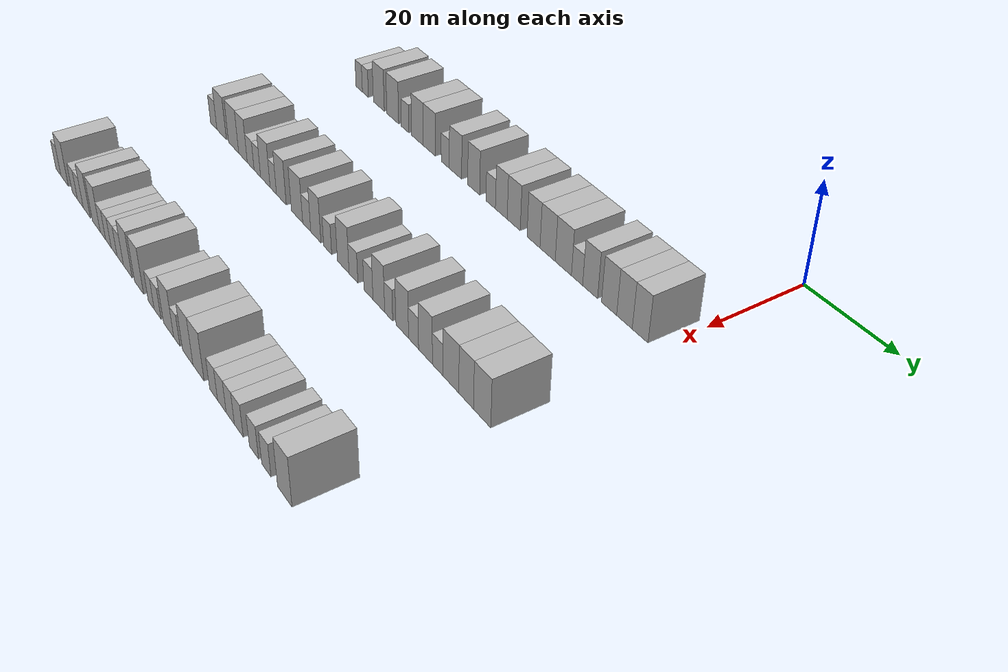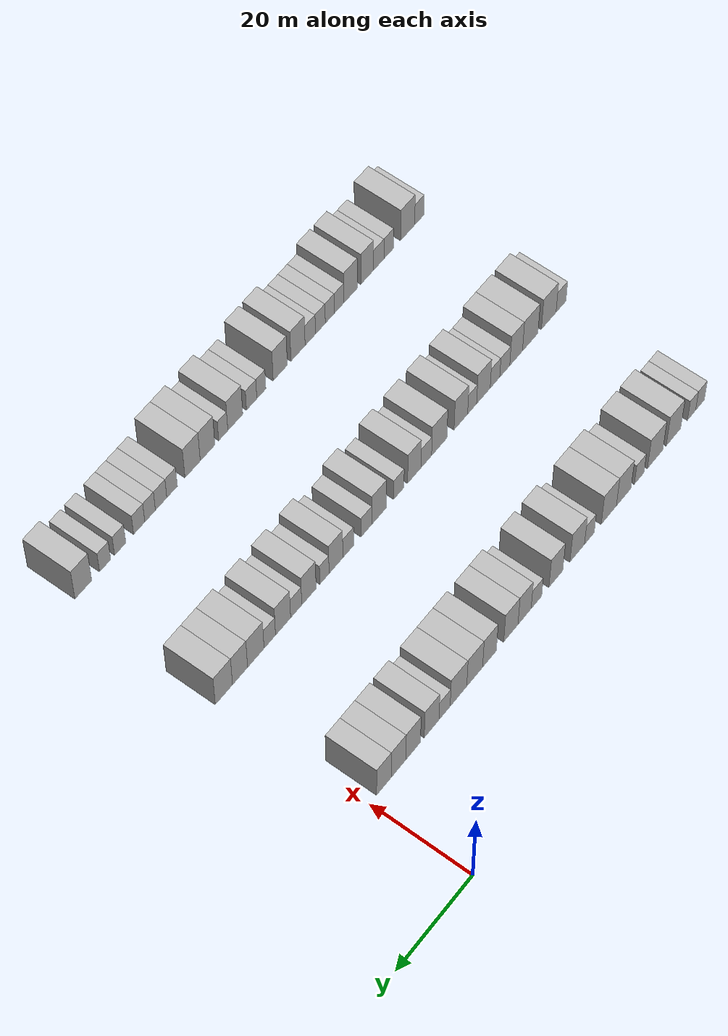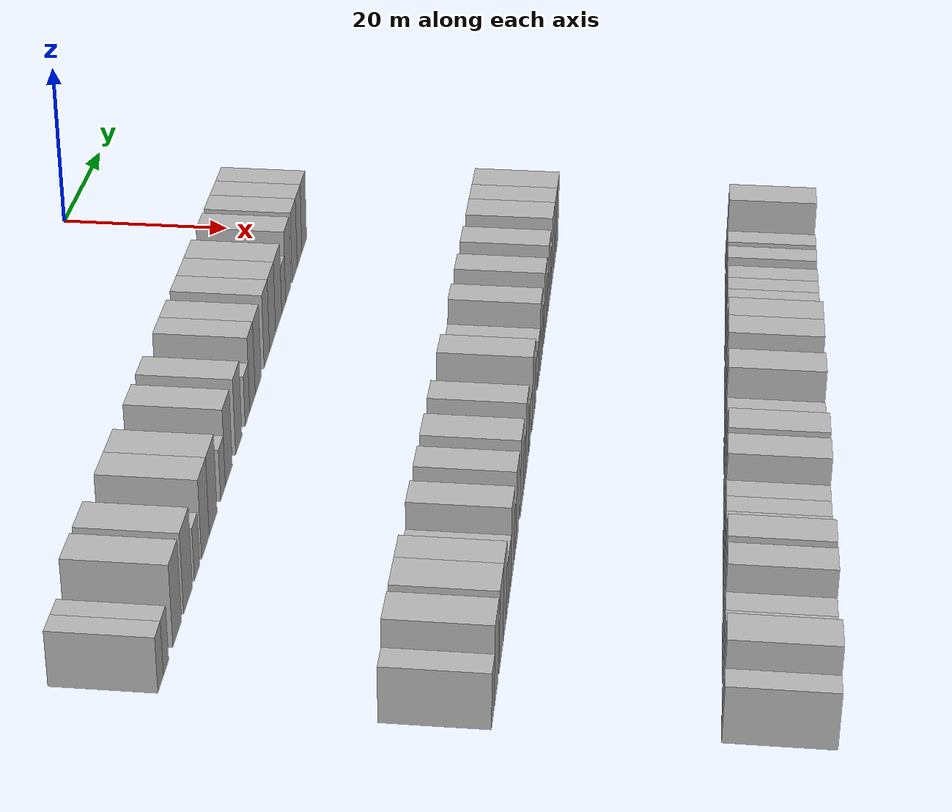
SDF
<sdf version="1.6">
 <world name="default">
  <model name="building_47">
   <static>1</static>
   <pose>25.0000 -91.8514 0 0.000000 0.000000 0.000000</pose>
   <link name="link">
    <pose>0 0 3.00 0 0 0</pose>
    <collision name="collision"><geometry><box><size>10.0000 2.5813 6.0000</size></box></geometry></collision>
    <visual name="visual">
     <cast_shadows>0</cast_shadows>
     <geometry><box><size>10.0000 2.5813 6.0000</size></box></geometry>
     <material>
      <script>
       <uri>model://HANNAS_wall/materials/scripts</uri>
       <uri>model://HANNAS_wall/materials/textures</uri>
       <name>vrc/HANNAS_wall</name>
      </script>
     </material>
    </visual>
   </link>
  </model>
  <model name="building_48">
   <static>1</static>
   <pose>25.0000 -89.3444 0 0.000000 0.000000 0.000000</pose>
   <link name="link">
    <pose>0 0 3.00 0 0 0</pose>
    <collision name="collision"><geometry><box><size>10.0000 2.4326 6.0000</size></box></geometry></collision>
    <visual name="visual">
     <cast_shadows>0</cast_shadows>
     <geometry><box><size>10.0000 2.4326 6.0000</size></box></geometry>
     <material>
      <script>
       <uri>model://HANNAS_wall/materials/scripts</uri>
       <uri>model://HANNAS_wall/materials/textures</uri>
       <name>vrc/HANNAS_wall</name>
      </script>
     </material>
    </visual>
   </link>
  </model>
  <model name="building_49">
   <static>1</static>
   <pose>25.0000 -83.9963 0 0.000000 0.000000 0.000000</pose>
   <link name="link">
    <pose>0 0 4.50 0 0 0</pose>
    <collision name="collision"><geometry><box><size>10.0000 4.2638 9.0000</size></box></geometry></collision>
    <visual name="visual">
     <cast_shadows>0</cast_shadows>
     <geometry><box><size>10.0000 4.2638 9.0000</size></box></geometry>
     <material>
      <script>
       <uri>model://HANNAS_wall/materials/scripts</uri>
       <uri>model://HANNAS_wall/materials/textures</uri>
       <name>vrc/HANNAS_wall</name>
      </script>
     </material>
    </visual>
   </link>
  </model>
  <model name="building_50">
   <static>1</static>
   <pose>25.0000 -78.6208 0 0.000000 0.000000 0.000000</pose>
   <link name="link">
    <pose>0 0 4.50 0 0 0</pose>
    <collision name="collision"><geometry><box><size>10.0000 4.4872 9.0000</size></box></geometry></collision>
    <visual name="visual">
     <cast_shadows>0</cast_shadows>
     <geometry><box><size>10.0000 4.4872 9.0000</size></box></geometry>
     <material>
      <script>
       <uri>model://HANNAS_wall/materials/scripts</uri>
       <uri>model://HANNAS_wall/materials/textures</uri>
       <name>vrc/HANNAS_wall</name>
      </script>
     </material>
    </visual>
   </link>
  </model>
  <model name="building_51">
   <static>1</static>
   <pose>25.0000 -73.9829 0 0.000000 0.000000 0.000000</pose>
   <link name="link">
    <pose>0 0 3.00 0 0 0</pose>
    <collision name="collision"><geometry><box><size>10.0000 2.7885 6.0000</size></box></geometry></collision>
    <visual name="visual">
     <cast_shadows>0</cast_shadows>
     <geometry><box><size>10.0000 2.7885 6.0000</size></box></geometry>
     <material>
      <script>
       <uri>model://HANNAS_wall/materials/scripts</uri>
       <uri>model://HANNAS_wall/materials/textures</uri>
       <name>vrc/HANNAS_wall</name>
      </script>
     </material>
    </visual>
   </link>
  </model>
  <model name="building_52">
   <static>1</static>
   <pose>25.0000 -69.4989 0 0.000000 0.000000 0.000000</pose>
   <link name="link">
    <pose>0 0 4.50 0 0 0</pose>
    <collision name="collision"><geometry><box><size>10.0000 4.1795 9.0000</size></box></geometry></collision>
    <visual name="visual">
     <cast_shadows>0</cast_shadows>
     <geometry><box><size>10.0000 4.1795 9.0000</size></box></geometry>
     <material>
      <script>
       <uri>model://HANNAS_wall/materials/scripts</uri>
       <uri>model://HANNAS_wall/materials/textures</uri>
       <name>vrc/HANNAS_wall</name>
      </script>
     </material>
    </visual>
   </link>
  </model>
  <model name="building_53">
   <static>1</static>
   <pose>25.0000 -65.2397 0 0.000000 0.000000 0.000000</pose>
   <link name="link">
    <pose>0 0 4.50 0 0 0</pose>
    <collision name="collision"><geometry><box><size>10.0000 4.3389 9.0000</size></box></geometry></collision>
    <visual name="visual">
     <cast_shadows>0</cast_shadows>
     <geometry><box><size>10.0000 4.3389 9.0000</size></box></geometry>
     <material>
      <script>
       <uri>model://HANNAS_wall/materials/scripts</uri>
       <uri>model://HANNAS_wall/materials/textures</uri>
       <name>vrc/HANNAS_wall</name>
      </script>
     </material>
    </visual>
   </link>
  </model>
  <model name="building_54">
   <static>1</static>
   <pose>25.0000 -59.6784 0 0.000000 0.000000 0.000000</pose>
   <link name="link">
    <pose>0 0 3.00 0 0 0</pose>
    <collision name="collision"><geometry><box><size>10.0000 2.7838 6.0000</size></box></geometry></collision>
    <visual name="visual">
     <cast_shadows>0</cast_shadows>
     <geometry><box><size>10.0000 2.7838 6.0000</size></box></geometry>
     <material>
      <script>
       <uri>model://HANNAS_wall/materials/scripts</uri>
       <uri>model://HANNAS_wall/materials/textures</uri>
       <name>vrc/HANNAS_wall</name>
      </script>
     </material>
    </visual>
   </link>
  </model>
  <model name="building_55">
   <static>1</static>
   <pose>25.0000 -56.2320 0 0.000000 0.000000 0.000000</pose>
   <link name="link">
    <pose>0 0 4.50 0 0 0</pose>
    <collision name="collision"><geometry><box><size>10.0000 4.1091 9.0000</size></box></geometry></collision>
    <visual name="visual">
     <cast_shadows>0</cast_shadows>
     <geometry><box><size>10.0000 4.1091 9.0000</size></box></geometry>
     <material>
      <script>
       <uri>model://HANNAS_wall/materials/scripts</uri>
       <uri>model://HANNAS_wall/materials/textures</uri>
       <name>vrc/HANNAS_wall</name>
      </script>
     </material>
    </visual>
   </link>
  </model>
  <model name="building_56">
   <static>1</static>
   <pose>25.0000 -50.2350 0 0.000000 0.000000 0.000000</pose>
   <link name="link">
    <pose>0 0 4.50 0 0 0</pose>
    <collision name="collision"><geometry><box><size>10.0000 3.8848 9.0000</size></box></geometry></collision>
    <visual name="visual">
     <cast_shadows>0</cast_shadows>
     <geometry><box><size>10.0000 3.8848 9.0000</size></box></geometry>
     <material>
      <script>
       <uri>model://HANNAS_wall/materials/scripts</uri>
       <uri>model://HANNAS_wall/materials/textures</uri>
       <name>vrc/HANNAS_wall</name>
      </script>
     </material>
    </visual>
   </link>
  </model>
  <model name="building_57">
   <static>1</static>
   <pose>25.0000 -44.8190 0 0.000000 0.000000 0.000000</pose>
   <link name="link">
    <pose>0 0 3.00 0 0 0</pose>
    <collision name="collision"><geometry><box><size>10.0000 2.9473 6.0000</size></box></geometry></collision>
    <visual name="visual">
     <cast_shadows>0</cast_shadows>
     <geometry><box><size>10.0000 2.9473 6.0000</size></box></geometry>
     <material>
      <script>
       <uri>model://HANNAS_wall/materials/scripts</uri>
       <uri>model://HANNAS_wall/materials/textures</uri>
       <name>vrc/HANNAS_wall</name>
      </script>
     </material>
    </visual>
   </link>
  </model>
  <model name="building_58">
   <static>1</static>
   <pose>25.0000 -41.5328 0 0.000000 0.000000 0.000000</pose>
   <link name="link">
    <pose>0 0 4.50 0 0 0</pose>
    <collision name="collision"><geometry><box><size>10.0000 3.6251 9.0000</size></box></geometry></collision>
    <visual name="visual">
     <cast_shadows>0</cast_shadows>
     <geometry><box><size>10.0000 3.6251 9.0000</size></box></geometry>
     <material>
      <script>
       <uri>model://HANNAS_wall/materials/scripts</uri>
       <uri>model://HANNAS_wall/materials/textures</uri>
       <name>vrc/HANNAS_wall</name>
      </script>
     </material>
    </visual>
   </link>
  </model>
  <model name="building_59">
   <static>1</static>
   <pose>25.0000 -37.7586 0 0.000000 0.000000 0.000000</pose>
   <link name="link">
    <pose>0 0 4.50 0 0 0</pose>
    <collision name="collision"><geometry><box><size>10.0000 3.9233 9.0000</size></box></geometry></collision>
    <visual name="visual">
     <cast_shadows>0</cast_shadows>
     <geometry><box><size>10.0000 3.9233 9.0000</size></box></geometry>
     <material>
      <script>
       <uri>model://HANNAS_wall/materials/scripts</uri>
       <uri>model://HANNAS_wall/materials/textures</uri>
       <name>vrc/HANNAS_wall</name>
      </script>
     </material>
    </visual>
   </link>
  </model>
  <model name="building_60">
   <static>1</static>
   <pose>25.0000 -31.9169 0 0.000000 0.000000 0.000000</pose>
   <link name="link">
    <pose>0 0 4.50 0 0 0</pose>
    <collision name="collision"><geometry><box><size>10.0000 3.7601 9.0000</size></box></geometry></collision>
    <visual name="visual">
     <cast_shadows>0</cast_shadows>
     <geometry><box><size>10.0000 3.7601 9.0000</size></box></geometry>
     <material>
      <script>
       <uri>model://HANNAS_wall/materials/scripts</uri>
       <uri>model://HANNAS_wall/materials/textures</uri>
       <name>vrc/HANNAS_wall</name>
      </script>
     </material>
    </visual>
   </link>
  </model>
  <model name="building_61">
   <static>1</static>
   <pose>25.0000 -27.8898 0 0.000000 0.000000 0.000000</pose>
   <link name="link">
    <pose>0 0 4.50 0 0 0</pose>
    <collision name="collision"><geometry><box><size>10.0000 4.2941 9.0000</size></box></geometry></collision>
    <visual name="visual">
     <cast_shadows>0</cast_shadows>
     <geometry><box><size>10.0000 4.2941 9.0000</size></box></geometry>
     <material>
      <script>
       <uri>model://HANNAS_wall/materials/scripts</uri>
       <uri>model://HANNAS_wall/materials/textures</uri>
       <name>vrc/HANNAS_wall</name>
      </script>
     </material>
    </visual>
   </link>
  </model>
  <model name="building_62">
   <static>1</static>
   <pose>25.0000 -23.5132 0 0.000000 0.000000 0.000000</pose>
   <link name="link">
    <pose>0 0 4.50 0 0 0</pose>
    <collision name="collision"><geometry><box><size>10.0000 4.4592 9.0000</size></box></geometry></collision>
    <visual name="visual">
     <cast_shadows>0</cast_shadows>
     <geometry><box><size>10.0000 4.4592 9.0000</size></box></geometry>
     <material>
      <script>
       <uri>model://HANNAS_wall/materials/scripts</uri>
       <uri>model://HANNAS_wall/materials/textures</uri>
       <name>vrc/HANNAS_wall</name>
      </script>
     </material>
    </visual>
   </link>
  </model>
  <model name="building_63">
   <static>1</static>
   <pose>25.0000 -19.7858 0 0.000000 0.000000 0.000000</pose>
   <link name="link">
    <pose>0 0 3.00 0 0 0</pose>
    <collision name="collision"><geometry><box><size>10.0000 2.9956 6.0000</size></box></geometry></collision>
    <visual name="visual">
     <cast_shadows>0</cast_shadows>
     <geometry><box><size>10.0000 2.9956 6.0000</size></box></geometry>
     <material>
      <script>
       <uri>model://HANNAS_wall/materials/scripts</uri>
       <uri>model://HANNAS_wall/materials/textures</uri>
       <name>vrc/HANNAS_wall</name>
      </script>
     </material>
    </visual>
   </link>
  </model>
  <model name="building_64">
   <static>1</static>
   <pose>25.0000 -16.3273 0 0.000000 0.000000 0.000000</pose>
   <link name="link">
    <pose>0 0 4.50 0 0 0</pose>
    <collision name="collision"><geometry><box><size>10.0000 3.9213 9.0000</size></box></geometry></collision>
    <visual name="visual">
     <cast_shadows>0</cast_shadows>
     <geometry><box><size>10.0000 3.9213 9.0000</size></box></geometry>
     <material>
      <script>
       <uri>model://HANNAS_wall/materials/scripts</uri>
       <uri>model://HANNAS_wall/materials/textures</uri>
       <name>vrc/HANNAS_wall</name>
      </script>
     </material>
    </visual>
   </link>
  </model>
  <model name="building_65">
   <static>1</static>
   <pose>25.0000 -11.4402 0 0.000000 0.000000 0.000000</pose>
   <link name="link">
    <pose>0 0 4.50 0 0 0</pose>
    <collision name="collision"><geometry><box><size>10.0000 3.8529 9.0000</size></box></geometry></collision>
    <visual name="visual">
     <cast_shadows>0</cast_shadows>
     <geometry><box><size>10.0000 3.8529 9.0000</size></box></geometry>
     <material>
      <script>
       <uri>model://HANNAS_wall/materials/scripts</uri>
       <uri>model://HANNAS_wall/materials/textures</uri>
       <name>vrc/HANNAS_wall</name>
      </script>
     </material>
    </visual>
   </link>
  </model>
  <model name="building_66">
   <static>1</static>
   <pose>25.0000 -7.5894 0 0.000000 0.000000 0.000000</pose>
   <link name="link">
    <pose>0 0 4.50 0 0 0</pose>
    <collision name="collision"><geometry><box><size>10.0000 3.8488 9.0000</size></box></geometry></collision>
    <visual name="visual">
     <cast_shadows>0</cast_shadows>
     <geometry><box><size>10.0000 3.8488 9.0000</size></box></geometry>
     <material>
      <script>
       <uri>model://HANNAS_wall/materials/scripts</uri>
       <uri>model://HANNAS_wall/materials/textures</uri>
       <name>vrc/HANNAS_wall</name>
      </script>
     </material>
    </visual>
   </link>
  </model>
  <model name="building_67">
   <static>1</static>
   <pose>25.0000 -3.7619 0 0.000000 0.000000 0.000000</pose>
   <link name="link">
    <pose>0 0 4.50 0 0 0</pose>
    <collision name="collision"><geometry><box><size>10.0000 3.8061 9.0000</size></box></geometry></collision>
    <visual name="visual">
     <cast_shadows>0</cast_shadows>
     <geometry><box><size>10.0000 3.8061 9.0000</size></box></geometry>
     <material>
      <script>
       <uri>model://HANNAS_wall/materials/scripts</uri>
       <uri>model://HANNAS_wall/materials/textures</uri>
       <name>vrc/HANNAS_wall</name>
      </script>
     </material>
    </visual>
   </link>
  </model>
  <model name="building_188">
   <static>1</static>
   <pose>55.0000 -93.9460 0 0.000000 0.000000 0.000000</pose>
   <link name="link">
    <pose>0 0 3.00 0 0 0</pose>
    <collision name="collision"><geometry><box><size>10.0000 2.9074 6.0000</size></box></geometry></collision>
    <visual name="visual">
     <cast_shadows>0</cast_shadows>
     <geometry><box><size>10.0000 2.9074 6.0000</size></box></geometry>
     <material>
      <script>
       <uri>model://HANNAS_wall/materials/scripts</uri>
       <uri>model://HANNAS_wall/materials/textures</uri>
       <name>vrc/HANNAS_wall</name>
      </script>
     </material>
    </visual>
   </link>
  </model>
  <model name="building_189">
   <static>1</static>
   <pose>55.0000 -90.3406 0 0.000000 0.000000 0.000000</pose>
   <link name="link">
    <pose>0 0 4.50 0 0 0</pose>
    <collision name="collision"><geometry><box><size>10.0000 4.3033 9.0000</size></box></geometry></collision>
    <visual name="visual">
     <cast_shadows>0</cast_shadows>
     <geometry><box><size>10.0000 4.3033 9.0000</size></box></geometry>
     <material>
      <script>
       <uri>model://HANNAS_wall/materials/scripts</uri>
       <uri>model://HANNAS_wall/materials/textures</uri>
       <name>vrc/HANNAS_wall</name>
      </script>
     </material>
    </visual>
   </link>
  </model>
  <model name="building_190">
   <static>1</static>
   <pose>55.0000 -84.9470 0 0.000000 0.000000 0.000000</pose>
   <link name="link">
    <pose>0 0 4.50 0 0 0</pose>
    <collision name="collision"><geometry><box><size>10.0000 4.4840 9.0000</size></box></geometry></collision>
    <visual name="visual">
     <cast_shadows>0</cast_shadows>
     <geometry><box><size>10.0000 4.4840 9.0000</size></box></geometry>
     <material>
      <script>
       <uri>model://HANNAS_wall/materials/scripts</uri>
       <uri>model://HANNAS_wall/materials/textures</uri>
       <name>vrc/HANNAS_wall</name>
      </script>
     </material>
    </visual>
   </link>
  </model>
  <model name="building_191">
   <static>1</static>
   <pose>55.0000 -80.8673 0 0.000000 0.000000 0.000000</pose>
   <link name="link">
    <pose>0 0 4.50 0 0 0</pose>
    <collision name="collision"><geometry><box><size>10.0000 3.6753 9.0000</size></box></geometry></collision>
    <visual name="visual">
     <cast_shadows>0</cast_shadows>
     <geometry><box><size>10.0000 3.6753 9.0000</size></box></geometry>
     <material>
      <script>
       <uri>model://HANNAS_wall/materials/scripts</uri>
       <uri>model://HANNAS_wall/materials/textures</uri>
       <name>vrc/HANNAS_wall</name>
      </script>
     </material>
    </visual>
   </link>
  </model>
  <model name="building_192">
   <static>1</static>
   <pose>55.0000 -77.5917 0 0.000000 0.000000 0.000000</pose>
   <link name="link">
    <pose>0 0 3.00 0 0 0</pose>
    <collision name="collision"><geometry><box><size>10.0000 2.8758 6.0000</size></box></geometry></collision>
    <visual name="visual">
     <cast_shadows>0</cast_shadows>
     <geometry><box><size>10.0000 2.8758 6.0000</size></box></geometry>
     <material>
      <script>
       <uri>model://HANNAS_wall/materials/scripts</uri>
       <uri>model://HANNAS_wall/materials/textures</uri>
       <name>vrc/HANNAS_wall</name>
      </script>
     </material>
    </visual>
   </link>
  </model>
  <model name="building_193">
   <static>1</static>
   <pose>55.0000 -74.7866 0 0.000000 0.000000 0.000000</pose>
   <link name="link">
    <pose>0 0 3.00 0 0 0</pose>
    <collision name="collision"><geometry><box><size>10.0000 2.7346 6.0000</size></box></geometry></collision>
    <visual name="visual">
     <cast_shadows>0</cast_shadows>
     <geometry><box><size>10.0000 2.7346 6.0000</size></box></geometry>
     <material>
      <script>
       <uri>model://HANNAS_wall/materials/scripts</uri>
       <uri>model://HANNAS_wall/materials/textures</uri>
       <name>vrc/HANNAS_wall</name>
      </script>
     </material>
    </visual>
   </link>
  </model>
  <model name="building_194">
   <static>1</static>
   <pose>55.0000 -71.4811 0 0.000000 0.000000 0.000000</pose>
   <link name="link">
    <pose>0 0 4.50 0 0 0</pose>
    <collision name="collision"><geometry><box><size>10.0000 3.8763 9.0000</size></box></geometry></collision>
    <visual name="visual">
     <cast_shadows>0</cast_shadows>
     <geometry><box><size>10.0000 3.8763 9.0000</size></box></geometry>
     <material>
      <script>
       <uri>model://HANNAS_wall/materials/scripts</uri>
       <uri>model://HANNAS_wall/materials/textures</uri>
       <name>vrc/HANNAS_wall</name>
      </script>
     </material>
    </visual>
   </link>
  </model>
  <model name="building_195">
   <static>1</static>
   <pose>55.0000 -68.2763 0 0.000000 0.000000 0.000000</pose>
   <link name="link">
    <pose>0 0 3.00 0 0 0</pose>
    <collision name="collision"><geometry><box><size>10.0000 2.5333 6.0000</size></box></geometry></collision>
    <visual name="visual">
     <cast_shadows>0</cast_shadows>
     <geometry><box><size>10.0000 2.5333 6.0000</size></box></geometry>
     <material>
      <script>
       <uri>model://HANNAS_wall/materials/scripts</uri>
       <uri>model://HANNAS_wall/materials/textures</uri>
       <name>vrc/HANNAS_wall</name>
      </script>
     </material>
    </visual>
   </link>
  </model>
  <model name="building_196">
   <static>1</static>
   <pose>55.0000 -65.0880 0 0.000000 0.000000 0.000000</pose>
   <link name="link">
    <pose>0 0 4.50 0 0 0</pose>
    <collision name="collision"><geometry><box><size>10.0000 3.8432 9.0000</size></box></geometry></collision>
    <visual name="visual">
     <cast_shadows>0</cast_shadows>
     <geometry><box><size>10.0000 3.8432 9.0000</size></box></geometry>
     <material>
      <script>
       <uri>model://HANNAS_wall/materials/scripts</uri>
       <uri>model://HANNAS_wall/materials/textures</uri>
       <name>vrc/HANNAS_wall</name>
      </script>
     </material>
    </visual>
   </link>
  </model>
  <model name="building_197">
   <static>1</static>
   <pose>55.0000 -59.0222 0 0.000000 0.000000 0.000000</pose>
   <link name="link">
    <pose>0 0 4.50 0 0 0</pose>
    <collision name="collision"><geometry><box><size>10.0000 4.2885 9.0000</size></box></geometry></collision>
    <visual name="visual">
     <cast_shadows>0</cast_shadows>
     <geometry><box><size>10.0000 4.2885 9.0000</size></box></geometry>
     <material>
      <script>
       <uri>model://HANNAS_wall/materials/scripts</uri>
       <uri>model://HANNAS_wall/materials/textures</uri>
       <name>vrc/HANNAS_wall</name>
      </script>
     </material>
    </visual>
   </link>
  </model>
  <model name="building_198">
   <static>1</static>
   <pose>55.0000 -55.3879 0 0.000000 0.000000 0.000000</pose>
   <link name="link">
    <pose>0 0 3.00 0 0 0</pose>
    <collision name="collision"><geometry><box><size>10.0000 2.9801 6.0000</size></box></geometry></collision>
    <visual name="visual">
     <cast_shadows>0</cast_shadows>
     <geometry><box><size>10.0000 2.9801 6.0000</size></box></geometry>
     <material>
      <script>
       <uri>model://HANNAS_wall/materials/scripts</uri>
       <uri>model://HANNAS_wall/materials/textures</uri>
       <name>vrc/HANNAS_wall</name>
      </script>
     </material>
    </visual>
   </link>
  </model>
  <model name="building_199">
   <static>1</static>
   <pose>55.0000 -52.0593 0 0.000000 0.000000 0.000000</pose>
   <link name="link">
    <pose>0 0 4.50 0 0 0</pose>
    <collision name="collision"><geometry><box><size>10.0000 3.6770 9.0000</size></box></geometry></collision>
    <visual name="visual">
     <cast_shadows>0</cast_shadows>
     <geometry><box><size>10.0000 3.6770 9.0000</size></box></geometry>
     <material>
      <script>
       <uri>model://HANNAS_wall/materials/scripts</uri>
       <uri>model://HANNAS_wall/materials/textures</uri>
       <name>vrc/HANNAS_wall</name>
      </script>
     </material>
    </visual>
   </link>
  </model>
  <model name="building_200">
   <static>1</static>
   <pose>55.0000 -47.8154 0 0.000000 0.000000 0.000000</pose>
   <link name="link">
    <pose>0 0 3.00 0 0 0</pose>
    <collision name="collision"><geometry><box><size>10.0000 2.8108 6.0000</size></box></geometry></collision>
    <visual name="visual">
     <cast_shadows>0</cast_shadows>
     <geometry><box><size>10.0000 2.8108 6.0000</size></box></geometry>
     <material>
      <script>
       <uri>model://HANNAS_wall/materials/scripts</uri>
       <uri>model://HANNAS_wall/materials/textures</uri>
       <name>vrc/HANNAS_wall</name>
      </script>
     </material>
    </visual>
   </link>
  </model>
  <model name="building_201">
   <static>1</static>
   <pose>55.0000 -42.4171 0 0.000000 0.000000 0.000000</pose>
   <link name="link">
    <pose>0 0 4.50 0 0 0</pose>
    <collision name="collision"><geometry><box><size>10.0000 3.9858 9.0000</size></box></geometry></collision>
    <visual name="visual">
     <cast_shadows>0</cast_shadows>
     <geometry><box><size>10.0000 3.9858 9.0000</size></box></geometry>
     <material>
      <script>
       <uri>model://HANNAS_wall/materials/scripts</uri>
       <uri>model://HANNAS_wall/materials/textures</uri>
       <name>vrc/HANNAS_wall</name>
      </script>
     </material>
    </visual>
   </link>
  </model>
  <model name="building_202">
   <static>1</static>
   <pose>55.0000 -38.9572 0 0.000000 0.000000 0.000000</pose>
   <link name="link">
    <pose>0 0 3.00 0 0 0</pose>
    <collision name="collision"><geometry><box><size>10.0000 2.9340 6.0000</size></box></geometry></collision>
    <visual name="visual">
     <cast_shadows>0</cast_shadows>
     <geometry><box><size>10.0000 2.9340 6.0000</size></box></geometry>
     <material>
      <script>
       <uri>model://HANNAS_wall/materials/scripts</uri>
       <uri>model://HANNAS_wall/materials/textures</uri>
       <name>vrc/HANNAS_wall</name>
      </script>
     </material>
    </visual>
   </link>
  </model>
  <model name="building_203">
   <static>1</static>
   <pose>55.0000 -34.0324 0 0.000000 0.000000 0.000000</pose>
   <link name="link">
    <pose>0 0 3.00 0 0 0</pose>
    <collision name="collision"><geometry><box><size>10.0000 2.9156 6.0000</size></box></geometry></collision>
    <visual name="visual">
     <cast_shadows>0</cast_shadows>
     <geometry><box><size>10.0000 2.9156 6.0000</size></box></geometry>
     <material>
      <script>
       <uri>model://HANNAS_wall/materials/scripts</uri>
       <uri>model://HANNAS_wall/materials/textures</uri>
       <name>vrc/HANNAS_wall</name>
      </script>
     </material>
    </visual>
   </link>
  </model>
  <model name="building_204">
   <static>1</static>
   <pose>55.0000 -30.7263 0 0.000000 0.000000 0.000000</pose>
   <link name="link">
    <pose>0 0 4.50 0 0 0</pose>
    <collision name="collision"><geometry><box><size>10.0000 3.6966 9.0000</size></box></geometry></collision>
    <visual name="visual">
     <cast_shadows>0</cast_shadows>
     <geometry><box><size>10.0000 3.6966 9.0000</size></box></geometry>
     <material>
      <script>
       <uri>model://HANNAS_wall/materials/scripts</uri>
       <uri>model://HANNAS_wall/materials/textures</uri>
       <name>vrc/HANNAS_wall</name>
      </script>
     </material>
    </visual>
   </link>
  </model>
  <model name="building_205">
   <static>1</static>
   <pose>55.0000 -27.6455 0 0.000000 0.000000 0.000000</pose>
   <link name="link">
    <pose>0 0 3.00 0 0 0</pose>
    <collision name="collision"><geometry><box><size>10.0000 2.4651 6.0000</size></box></geometry></collision>
    <visual name="visual">
     <cast_shadows>0</cast_shadows>
     <geometry><box><size>10.0000 2.4651 6.0000</size></box></geometry>
     <material>
      <script>
       <uri>model://HANNAS_wall/materials/scripts</uri>
       <uri>model://HANNAS_wall/materials/textures</uri>
       <name>vrc/HANNAS_wall</name>
      </script>
     </material>
    </visual>
   </link>
  </model>
  <model name="building_206">
   <static>1</static>
   <pose>55.0000 -23.5102 0 0.000000 0.000000 0.000000</pose>
   <link name="link">
    <pose>0 0 4.50 0 0 0</pose>
    <collision name="collision"><geometry><box><size>10.0000 3.8053 9.0000</size></box></geometry></collision>
    <visual name="visual">
     <cast_shadows>0</cast_shadows>
     <geometry><box><size>10.0000 3.8053 9.0000</size></box></geometry>
     <material>
      <script>
       <uri>model://HANNAS_wall/materials/scripts</uri>
       <uri>model://HANNAS_wall/materials/textures</uri>
       <name>vrc/HANNAS_wall</name>
      </script>
     </material>
    </visual>
   </link>
  </model>
  <model name="building_207">
   <static>1</static>
   <pose>55.0000 -20.1351 0 0.000000 0.000000 0.000000</pose>
   <link name="link">
    <pose>0 0 3.00 0 0 0</pose>
    <collision name="collision"><geometry><box><size>10.0000 2.9449 6.0000</size></box></geometry></collision>
    <visual name="visual">
     <cast_shadows>0</cast_shadows>
     <geometry><box><size>10.0000 2.9449 6.0000</size></box></geometry>
     <material>
      <script>
       <uri>model://HANNAS_wall/materials/scripts</uri>
       <uri>model://HANNAS_wall/materials/textures</uri>
       <name>vrc/HANNAS_wall</name>
      </script>
     </material>
    </visual>
   </link>
  </model>
  <model name="building_208">
   <static>1</static>
   <pose>55.0000 -16.6815 0 0.000000 0.000000 0.000000</pose>
   <link name="link">
    <pose>0 0 4.50 0 0 0</pose>
    <collision name="collision"><geometry><box><size>10.0000 3.9624 9.0000</size></box></geometry></collision>
    <visual name="visual">
     <cast_shadows>0</cast_shadows>
     <geometry><box><size>10.0000 3.9624 9.0000</size></box></geometry>
     <material>
      <script>
       <uri>model://HANNAS_wall/materials/scripts</uri>
       <uri>model://HANNAS_wall/materials/textures</uri>
       <name>vrc/HANNAS_wall</name>
      </script>
     </material>
    </visual>
   </link>
  </model>
  <model name="building_209">
   <static>1</static>
   <pose>55.0000 -13.2013 0 0.000000 0.000000 0.000000</pose>
   <link name="link">
    <pose>0 0 3.00 0 0 0</pose>
    <collision name="collision"><geometry><box><size>10.0000 2.9980 6.0000</size></box></geometry></collision>
    <visual name="visual">
     <cast_shadows>0</cast_shadows>
     <geometry><box><size>10.0000 2.9980 6.0000</size></box></geometry>
     <material>
      <script>
       <uri>model://HANNAS_wall/materials/scripts</uri>
       <uri>model://HANNAS_wall/materials/textures</uri>
       <name>vrc/HANNAS_wall</name>
      </script>
     </material>
    </visual>
   </link>
  </model>
  <model name="building_210">
   <static>1</static>
   <pose>55.0000 -9.5626 0 0.000000 0.000000 0.000000</pose>
   <link name="link">
    <pose>0 0 4.50 0 0 0</pose>
    <collision name="collision"><geometry><box><size>10.0000 4.2794 9.0000</size></box></geometry></collision>
    <visual name="visual">
     <cast_shadows>0</cast_shadows>
     <geometry><box><size>10.0000 4.2794 9.0000</size></box></geometry>
     <material>
      <script>
       <uri>model://HANNAS_wall/materials/scripts</uri>
       <uri>model://HANNAS_wall/materials/textures</uri>
       <name>vrc/HANNAS_wall</name>
      </script>
     </material>
    </visual>
   </link>
  </model>
  <model name="building_211">
   <static>1</static>
   <pose>55.0000 -5.4700 0 0.000000 0.000000 0.000000</pose>
   <link name="link">
    <pose>0 0 4.50 0 0 0</pose>
    <collision name="collision"><geometry><box><size>10.0000 3.9058 9.0000</size></box></geometry></collision>
    <visual name="visual">
     <cast_shadows>0</cast_shadows>
     <geometry><box><size>10.0000 3.9058 9.0000</size></box></geometry>
     <material>
      <script>
       <uri>model://HANNAS_wall/materials/scripts</uri>
       <uri>model://HANNAS_wall/materials/textures</uri>
       <name>vrc/HANNAS_wall</name>
      </script>
     </material>
    </visual>
   </link>
  </model>
  <model name="building_212">
   <static>1</static>
   <pose>55.0000 -1.3039 0 0.000000 0.000000 0.000000</pose>
   <link name="link">
    <pose>0 0 4.50 0 0 0</pose>
    <collision name="collision"><geometry><box><size>10.0000 4.4262 9.0000</size></box></geometry></collision>
    <visual name="visual">
     <cast_shadows>0</cast_shadows>
     <geometry><box><size>10.0000 4.4262 9.0000</size></box></geometry>
     <material>
      <script>
       <uri>model://HANNAS_wall/materials/scripts</uri>
       <uri>model://HANNAS_wall/materials/textures</uri>
       <name>vrc/HANNAS_wall</name>
      </script>
     </material>
    </visual>
   </link>
  </model>
  <model name="building_327">
   <static>1</static>
   <pose>85.0000 -93.8591 0 0.000000 0.000000 0.000000</pose>
   <link name="link">
    <pose>0 0 3.00 0 0 0</pose>
    <collision name="collision"><geometry><box><size>10.0000 2.6670 6.0000</size></box></geometry></collision>
    <visual name="visual">
     <cast_shadows>0</cast_shadows>
     <geometry><box><size>10.0000 2.6670 6.0000</size></box></geometry>
     <material>
      <script>
       <uri>model://HANNAS_wall/materials/scripts</uri>
       <uri>model://HANNAS_wall/materials/textures</uri>
       <name>vrc/HANNAS_wall</name>
      </script>
     </material>
    </visual>
   </link>
  </model>
  <model name="building_328">
   <static>1</static>
   <pose>85.0000 -90.4902 0 0.000000 0.000000 0.000000</pose>
   <link name="link">
    <pose>0 0 4.50 0 0 0</pose>
    <collision name="collision"><geometry><box><size>10.0000 4.0709 9.0000</size></box></geometry></collision>
    <visual name="visual">
     <cast_shadows>0</cast_shadows>
     <geometry><box><size>10.0000 4.0709 9.0000</size></box></geometry>
     <material>
      <script>
       <uri>model://HANNAS_wall/materials/scripts</uri>
       <uri>model://HANNAS_wall/materials/textures</uri>
       <name>vrc/HANNAS_wall</name>
      </script>
     </material>
    </visual>
   </link>
  </model>
  <model name="building_329">
   <static>1</static>
   <pose>85.0000 -85.0699 0 0.000000 0.000000 0.000000</pose>
   <link name="link">
    <pose>0 0 3.00 0 0 0</pose>
    <collision name="collision"><geometry><box><size>10.0000 2.7699 6.0000</size></box></geometry></collision>
    <visual name="visual">
     <cast_shadows>0</cast_shadows>
     <geometry><box><size>10.0000 2.7699 6.0000</size></box></geometry>
     <material>
      <script>
       <uri>model://HANNAS_wall/materials/scripts</uri>
       <uri>model://HANNAS_wall/materials/textures</uri>
       <name>vrc/HANNAS_wall</name>
      </script>
     </material>
    </visual>
   </link>
  </model>
  <model name="building_330">
   <static>1</static>
   <pose>85.0000 -82.2132 0 0.000000 0.000000 0.000000</pose>
   <link name="link">
    <pose>0 0 3.00 0 0 0</pose>
    <collision name="collision"><geometry><box><size>10.0000 2.9434 6.0000</size></box></geometry></collision>
    <visual name="visual">
     <cast_shadows>0</cast_shadows>
     <geometry><box><size>10.0000 2.9434 6.0000</size></box></geometry>
     <material>
      <script>
       <uri>model://HANNAS_wall/materials/scripts</uri>
       <uri>model://HANNAS_wall/materials/textures</uri>
       <name>vrc/HANNAS_wall</name>
      </script>
     </material>
    </visual>
   </link>
  </model>
  <model name="building_331">
   <static>1</static>
   <pose>85.0000 -78.9266 0 0.000000 0.000000 0.000000</pose>
   <link name="link">
    <pose>0 0 4.50 0 0 0</pose>
    <collision name="collision"><geometry><box><size>10.0000 3.6299 9.0000</size></box></geometry></collision>
    <visual name="visual">
     <cast_shadows>0</cast_shadows>
     <geometry><box><size>10.0000 3.6299 9.0000</size></box></geometry>
     <material>
      <script>
       <uri>model://HANNAS_wall/materials/scripts</uri>
       <uri>model://HANNAS_wall/materials/textures</uri>
       <name>vrc/HANNAS_wall</name>
      </script>
     </material>
    </visual>
   </link>
  </model>
  <model name="building_332">
   <static>1</static>
   <pose>85.0000 -74.2110 0 0.000000 0.000000 0.000000</pose>
   <link name="link">
    <pose>0 0 4.50 0 0 0</pose>
    <collision name="collision"><geometry><box><size>10.0000 3.8013 9.0000</size></box></geometry></collision>
    <visual name="visual">
     <cast_shadows>0</cast_shadows>
     <geometry><box><size>10.0000 3.8013 9.0000</size></box></geometry>
     <material>
      <script>
       <uri>model://HANNAS_wall/materials/scripts</uri>
       <uri>model://HANNAS_wall/materials/textures</uri>
       <name>vrc/HANNAS_wall</name>
      </script>
     </material>
    </visual>
   </link>
  </model>
  <model name="building_333">
   <static>1</static>
   <pose>85.0000 -71.0028 0 0.000000 0.000000 0.000000</pose>
   <link name="link">
    <pose>0 0 3.00 0 0 0</pose>
    <collision name="collision"><geometry><box><size>10.0000 2.6150 6.0000</size></box></geometry></collision>
    <visual name="visual">
     <cast_shadows>0</cast_shadows>
     <geometry><box><size>10.0000 2.6150 6.0000</size></box></geometry>
     <material>
      <script>
       <uri>model://HANNAS_wall/materials/scripts</uri>
       <uri>model://HANNAS_wall/materials/textures</uri>
       <name>vrc/HANNAS_wall</name>
      </script>
     </material>
    </visual>
   </link>
  </model>
  <model name="building_334">
   <static>1</static>
   <pose>85.0000 -68.4000 0 0.000000 0.000000 0.000000</pose>
   <link name="link">
    <pose>0 0 3.00 0 0 0</pose>
    <collision name="collision"><geometry><box><size>10.0000 2.5906 6.0000</size></box></geometry></collision>
    <visual name="visual">
     <cast_shadows>0</cast_shadows>
     <geometry><box><size>10.0000 2.5906 6.0000</size></box></geometry>
     <material>
      <script>
       <uri>model://HANNAS_wall/materials/scripts</uri>
       <uri>model://HANNAS_wall/materials/textures</uri>
       <name>vrc/HANNAS_wall</name>
      </script>
     </material>
    </visual>
   </link>
  </model>
  <model name="building_335">
   <static>1</static>
   <pose>85.0000 -65.7343 0 0.000000 0.000000 0.000000</pose>
   <link name="link">
    <pose>0 0 3.00 0 0 0</pose>
    <collision name="collision"><geometry><box><size>10.0000 2.7409 6.0000</size></box></geometry></collision>
    <visual name="visual">
     <cast_shadows>0</cast_shadows>
     <geometry><box><size>10.0000 2.7409 6.0000</size></box></geometry>
     <material>
      <script>
       <uri>model://HANNAS_wall/materials/scripts</uri>
       <uri>model://HANNAS_wall/materials/textures</uri>
       <name>vrc/HANNAS_wall</name>
      </script>
     </material>
    </visual>
   </link>
  </model>
  <model name="building_336">
   <static>1</static>
   <pose>85.0000 -62.9191 0 0.000000 0.000000 0.000000</pose>
   <link name="link">
    <pose>0 0 3.00 0 0 0</pose>
    <collision name="collision"><geometry><box><size>10.0000 2.8894 6.0000</size></box></geometry></collision>
    <visual name="visual">
     <cast_shadows>0</cast_shadows>
     <geometry><box><size>10.0000 2.8894 6.0000</size></box></geometry>
     <material>
      <script>
       <uri>model://HANNAS_wall/materials/scripts</uri>
       <uri>model://HANNAS_wall/materials/textures</uri>
       <name>vrc/HANNAS_wall</name>
      </script>
     </material>
    </visual>
   </link>
  </model>
  <model name="building_337">
   <static>1</static>
   <pose>85.0000 -59.5208 0 0.000000 0.000000 0.000000</pose>
   <link name="link">
    <pose>0 0 4.50 0 0 0</pose>
    <collision name="collision"><geometry><box><size>10.0000 3.9073 9.0000</size></box></geometry></collision>
    <visual name="visual">
     <cast_shadows>0</cast_shadows>
     <geometry><box><size>10.0000 3.9073 9.0000</size></box></geometry>
     <material>
      <script>
       <uri>model://HANNAS_wall/materials/scripts</uri>
       <uri>model://HANNAS_wall/materials/textures</uri>
       <name>vrc/HANNAS_wall</name>
      </script>
     </material>
    </visual>
   </link>
  </model>
  <model name="building_338">
   <static>1</static>
   <pose>85.0000 -54.6224 0 0.000000 0.000000 0.000000</pose>
   <link name="link">
    <pose>0 0 4.50 0 0 0</pose>
    <collision name="collision"><geometry><box><size>10.0000 3.8895 9.0000</size></box></geometry></collision>
    <visual name="visual">
     <cast_shadows>0</cast_shadows>
     <geometry><box><size>10.0000 3.8895 9.0000</size></box></geometry>
     <material>
      <script>
       <uri>model://HANNAS_wall/materials/scripts</uri>
       <uri>model://HANNAS_wall/materials/textures</uri>
       <name>vrc/HANNAS_wall</name>
      </script>
     </material>
    </visual>
   </link>
  </model>
  <model name="building_339">
   <static>1</static>
   <pose>85.0000 -49.4420 0 0.000000 0.000000 0.000000</pose>
   <link name="link">
    <pose>0 0 3.00 0 0 0</pose>
    <collision name="collision"><geometry><box><size>10.0000 2.4714 6.0000</size></box></geometry></collision>
    <visual name="visual">
     <cast_shadows>0</cast_shadows>
     <geometry><box><size>10.0000 2.4714 6.0000</size></box></geometry>
     <material>
      <script>
       <uri>model://HANNAS_wall/materials/scripts</uri>
       <uri>model://HANNAS_wall/materials/textures</uri>
       <name>vrc/HANNAS_wall</name>
      </script>
     </material>
    </visual>
   </link>
  </model>
  <model name="building_340">
   <static>1</static>
   <pose>85.0000 -46.8021 0 0.000000 0.000000 0.000000</pose>
   <link name="link">
    <pose>0 0 3.00 0 0 0</pose>
    <collision name="collision"><geometry><box><size>10.0000 2.8083 6.0000</size></box></geometry></collision>
    <visual name="visual">
     <cast_shadows>0</cast_shadows>
     <geometry><box><size>10.0000 2.8083 6.0000</size></box></geometry>
     <material>
      <script>
       <uri>model://HANNAS_wall/materials/scripts</uri>
       <uri>model://HANNAS_wall/materials/textures</uri>
       <name>vrc/HANNAS_wall</name>
      </script>
     </material>
    </visual>
   </link>
  </model>
  <model name="building_341">
   <static>1</static>
   <pose>85.0000 -42.3841 0 0.000000 0.000000 0.000000</pose>
   <link name="link">
    <pose>0 0 4.50 0 0 0</pose>
    <collision name="collision"><geometry><box><size>10.0000 4.0277 9.0000</size></box></geometry></collision>
    <visual name="visual">
     <cast_shadows>0</cast_shadows>
     <geometry><box><size>10.0000 4.0277 9.0000</size></box></geometry>
     <material>
      <script>
       <uri>model://HANNAS_wall/materials/scripts</uri>
       <uri>model://HANNAS_wall/materials/textures</uri>
       <name>vrc/HANNAS_wall</name>
      </script>
     </material>
    </visual>
   </link>
  </model>
  <model name="building_342">
   <static>1</static>
   <pose>85.0000 -39.1411 0 0.000000 0.000000 0.000000</pose>
   <link name="link">
    <pose>0 0 3.00 0 0 0</pose>
    <collision name="collision"><geometry><box><size>10.0000 2.4584 6.0000</size></box></geometry></collision>
    <visual name="visual">
     <cast_shadows>0</cast_shadows>
     <geometry><box><size>10.0000 2.4584 6.0000</size></box></geometry>
     <material>
      <script>
       <uri>model://HANNAS_wall/materials/scripts</uri>
       <uri>model://HANNAS_wall/materials/textures</uri>
       <name>vrc/HANNAS_wall</name>
      </script>
     </material>
    </visual>
   </link>
  </model>
  <model name="building_343">
   <static>1</static>
   <pose>85.0000 -34.9547 0 0.000000 0.000000 0.000000</pose>
   <link name="link">
    <pose>0 0 4.50 0 0 0</pose>
    <collision name="collision"><geometry><box><size>10.0000 3.9144 9.0000</size></box></geometry></collision>
    <visual name="visual">
     <cast_shadows>0</cast_shadows>
     <geometry><box><size>10.0000 3.9144 9.0000</size></box></geometry>
     <material>
      <script>
       <uri>model://HANNAS_wall/materials/scripts</uri>
       <uri>model://HANNAS_wall/materials/textures</uri>
       <name>vrc/HANNAS_wall</name>
      </script>
     </material>
    </visual>
   </link>
  </model>
  <model name="building_344">
   <static>1</static>
   <pose>85.0000 -30.9637 0 0.000000 0.000000 0.000000</pose>
   <link name="link">
    <pose>0 0 4.50 0 0 0</pose>
    <collision name="collision"><geometry><box><size>10.0000 4.0676 9.0000</size></box></geometry></collision>
    <visual name="visual">
     <cast_shadows>0</cast_shadows>
     <geometry><box><size>10.0000 4.0676 9.0000</size></box></geometry>
     <material>
      <script>
       <uri>model://HANNAS_wall/materials/scripts</uri>
       <uri>model://HANNAS_wall/materials/textures</uri>
       <name>vrc/HANNAS_wall</name>
      </script>
     </material>
    </visual>
   </link>
  </model>
  <model name="building_345">
   <static>1</static>
   <pose>85.0000 -25.5379 0 0.000000 0.000000 0.000000</pose>
   <link name="link">
    <pose>0 0 3.00 0 0 0</pose>
    <collision name="collision"><geometry><box><size>10.0000 2.7840 6.0000</size></box></geometry></collision>
    <visual name="visual">
     <cast_shadows>0</cast_shadows>
     <geometry><box><size>10.0000 2.7840 6.0000</size></box></geometry>
     <material>
      <script>
       <uri>model://HANNAS_wall/materials/scripts</uri>
       <uri>model://HANNAS_wall/materials/textures</uri>
       <name>vrc/HANNAS_wall</name>
      </script>
     </material>
    </visual>
   </link>
  </model>
  <model name="building_346">
   <static>1</static>
   <pose>85.0000 -22.6526 0 0.000000 0.000000 0.000000</pose>
   <link name="link">
    <pose>0 0 3.00 0 0 0</pose>
    <collision name="collision"><geometry><box><size>10.0000 2.9866 6.0000</size></box></geometry></collision>
    <visual name="visual">
     <cast_shadows>0</cast_shadows>
     <geometry><box><size>10.0000 2.9866 6.0000</size></box></geometry>
     <material>
      <script>
       <uri>model://HANNAS_wall/materials/scripts</uri>
       <uri>model://HANNAS_wall/materials/textures</uri>
       <name>vrc/HANNAS_wall</name>
      </script>
     </material>
    </visual>
   </link>
  </model>
  <model name="building_347">
   <static>1</static>
   <pose>85.0000 -19.7779 0 0.000000 0.000000 0.000000</pose>
   <link name="link">
    <pose>0 0 3.00 0 0 0</pose>
    <collision name="collision"><geometry><box><size>10.0000 2.7629 6.0000</size></box></geometry></collision>
    <visual name="visual">
     <cast_shadows>0</cast_shadows>
     <geometry><box><size>10.0000 2.7629 6.0000</size></box></geometry>
     <material>
      <script>
       <uri>model://HANNAS_wall/materials/scripts</uri>
       <uri>model://HANNAS_wall/materials/textures</uri>
       <name>vrc/HANNAS_wall</name>
      </script>
     </material>
    </visual>
   </link>
  </model>
  <model name="building_348">
   <static>1</static>
   <pose>85.0000 -16.9308 0 0.000000 0.000000 0.000000</pose>
   <link name="link">
    <pose>0 0 3.00 0 0 0</pose>
    <collision name="collision"><geometry><box><size>10.0000 2.9313 6.0000</size></box></geometry></collision>
    <visual name="visual">
     <cast_shadows>0</cast_shadows>
     <geometry><box><size>10.0000 2.9313 6.0000</size></box></geometry>
     <material>
      <script>
       <uri>model://HANNAS_wall/materials/scripts</uri>
       <uri>model://HANNAS_wall/materials/textures</uri>
       <name>vrc/HANNAS_wall</name>
      </script>
     </material>
    </visual>
   </link>
  </model>
  <model name="building_349">
   <static>1</static>
   <pose>85.0000 -12.0064 0 0.000000 0.000000 0.000000</pose>
   <link name="link">
    <pose>0 0 3.00 0 0 0</pose>
    <collision name="collision"><geometry><box><size>10.0000 2.9175 6.0000</size></box></geometry></collision>
    <visual name="visual">
     <cast_shadows>0</cast_shadows>
     <geometry><box><size>10.0000 2.9175 6.0000</size></box></geometry>
     <material>
      <script>
       <uri>model://HANNAS_wall/materials/scripts</uri>
       <uri>model://HANNAS_wall/materials/textures</uri>
       <name>vrc/HANNAS_wall</name>
      </script>
     </material>
    </visual>
   </link>
  </model>
  <model name="building_350">
   <static>1</static>
   <pose>85.0000 -8.1175 0 0.000000 0.000000 0.000000</pose>
   <link name="link">
    <pose>0 0 3.00 0 0 0</pose>
    <collision name="collision"><geometry><box><size>10.0000 2.8604 6.0000</size></box></geometry></collision>
    <visual name="visual">
     <cast_shadows>0</cast_shadows>
     <geometry><box><size>10.0000 2.8604 6.0000</size></box></geometry>
     <material>
      <script>
       <uri>model://HANNAS_wall/materials/scripts</uri>
       <uri>model://HANNAS_wall/materials/textures</uri>
       <name>vrc/HANNAS_wall</name>
      </script>
     </material>
    </visual>
   </link>
  </model>
  <model name="building_351">
   <static>1</static>
   <pose>85.0000 -2.5466 0 0.000000 0.000000 0.000000</pose>
   <link name="link">
    <pose>0 0 4.50 0 0 0</pose>
    <collision name="collision"><geometry><box><size>10.0000 4.2814 9.0000</size></box></geometry></collision>
    <visual name="visual">
     <cast_shadows>0</cast_shadows>
     <geometry><box><size>10.0000 4.2814 9.0000</size></box></geometry>
     <material>
      <script>
       <uri>model://HANNAS_wall/materials/scripts</uri>
       <uri>model://HANNAS_wall/materials/textures</uri>
       <name>vrc/HANNAS_wall</name>
      </script>
     </material>
    </visual>
   </link>
  </model>
 </world>
</sdf>
